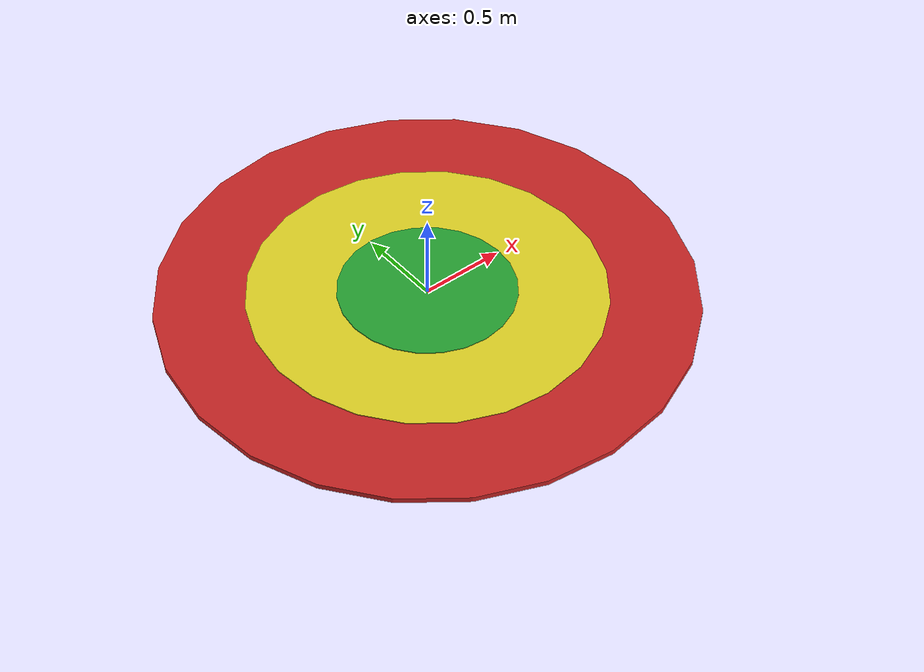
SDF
<?xml version='1.0'?>
<sdf version='1.6'>
  <model name='target'>
    <link name='green'>
      <pose frame=''>0 0 0 0 -0 0</pose>
      <self_collide>0</self_collide>
      <kinematic>0</kinematic>
      <gravity>0</gravity>
      <inertial>
        <mass>1.0</mass>
        <pose frame=''>0 0 0 0 -0 0</pose>
        <inertia>
          <ixx>1</ixx>
          <ixy>0</ixy>
          <ixz>0</ixz>
          <iyy>1</iyy>
          <iyz>0</iyz>
          <izz>1</izz>
        </inertia>
      </inertial>
      <visual name='visual'>
        <geometry>
          <cylinder>
            <radius>0.5</radius>
            <length>0.05</length>
          </cylinder>
        </geometry>
        <material>
          <script>
            <uri>file://media/materials/scripts/gazebo.material</uri>
            <name>Gazebo/Green</name>
          </script>
          <ambient>1 1 1 1</ambient>
          <diffuse>0 1 0 1</diffuse>
          <specular>0.1 0.1 0.1 1</specular>
          <emissive>0 0 0 1</emissive>
          <shader type='vertex'>
            <normal_map>__default__</normal_map>
          </shader>
        </material>
        <cast_shadows>0</cast_shadows>
        <transparency>0</transparency>
        <pose frame=''>0 0 0 0 -0 0</pose>
      </visual>
    </link>
    <link name='red'>
      <pose frame=''>0 0 0 0 -0 0</pose>
      <self_collide>0</self_collide>
      <kinematic>0</kinematic>
      <gravity>0</gravity>
      <inertial>
        <mass>1.0</mass>
        <pose frame=''>0 0 0 0 -0 0</pose>
        <inertia>
          <ixx>1</ixx>
          <ixy>0</ixy>
          <ixz>0</ixz>
          <iyy>1</iyy>
          <iyz>0</iyz>
          <izz>1</izz>
        </inertia>
      </inertial>
      <visual name='visual'>
        <geometry>
          <cylinder>
            <radius>1.5</radius>
            <length>0.03</length>
          </cylinder>
        </geometry>
        <material>
          <script>
            <uri>file://media/materials/scripts/gazebo.material</uri>
            <name>Gazebo/Red</name>
          </script>
          <ambient>1 1 1 1</ambient>
          <diffuse>1 0 0 1</diffuse>
          <specular>0.1 0.1 0.1 1</specular>
          <emissive>0 0 0 1</emissive>
          <shader type='vertex'>
            <normal_map>__default__</normal_map>
          </shader>
        </material>
        <cast_shadows>0</cast_shadows>
        <transparency>0</transparency>
        <pose frame=''>0 0 0 0 -0 0</pose>
      </visual>
    </link>
    <link name='yellow'>
      <pose frame=''>0 0 0 0 -0 0</pose>
      <self_collide>0</self_collide>
      <kinematic>0</kinematic>
      <gravity>0</gravity>
      <inertial>
        <mass>1.0</mass>
        <pose frame=''>0 0 0 0 -0 0</pose>
        <inertia>
          <ixx>1</ixx>
          <ixy>0</ixy>
          <ixz>0</ixz>
          <iyy>1</iyy>
          <iyz>0</iyz>
          <izz>1</izz>
        </inertia>
      </inertial>
      <visual name='visual'>
        <geometry>
          <cylinder>
            <radius>1</radius>
            <length>0.04</length>
          </cylinder>
        </geometry>
        <material>
          <script>
            <uri>file://media/materials/scripts/gazebo.material</uri>
            <name>Gazebo/Yellow</name>
          </script>

          <shader type='vertex'>
            <normal_map>__default__</normal_map>
          </shader>
        </material>
        <cast_shadows>0</cast_shadows>
        <transparency>0</transparency>
        <pose frame=''>0 0 0 0 -0 0</pose>
      </visual>
    </link>
    <static>0</static>
    <allow_auto_disable>1</allow_auto_disable>
  </model>
</sdf>
